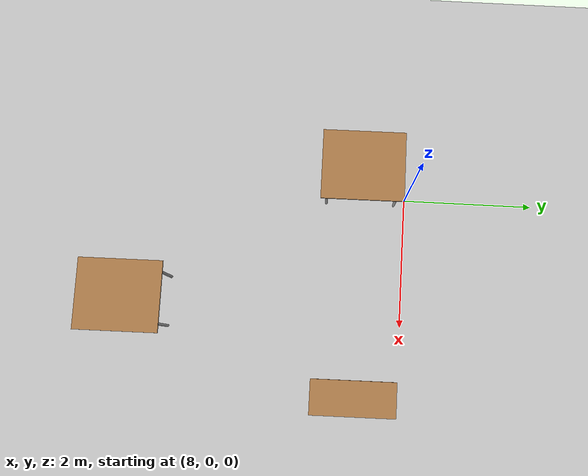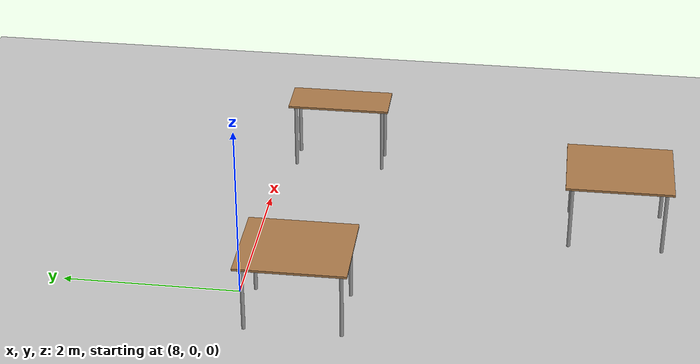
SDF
<sdf version="1.7">
 <world name="default">
  <model name="work_station_clone_clone">
   <link name="link">
    <inertial>
     <inertia><ixx>0</ixx><ixy>0</ixy><ixz>0</ixz><iyy>0</iyy><iyz>0</iyz><izz>0</izz></inertia>
     <mass>0</mass>
    </inertial>
    <visual name="back_right_leg">
     <pose>-0.53 -0.38 0.42 0 -0 0</pose>
     <geometry><cylinder><radius>0.0207459</radius><length>0.822541</length></cylinder></geometry>
     <material>
      <script><uri>file://media/materials/scripts/gazebo.material</uri><name>Gazebo/Grey</name></script>
      <shader type="pixel"><normal_map>__default__</normal_map></shader>
      <ambient>0.3 0.3 0.3 1</ambient>
      <diffuse>0.7 0.7 0.7 1</diffuse>
      <specular>0.01 0.01 0.01 1</specular>
      <emissive>0 0 0 1</emissive>
     </material>
    </visual>
    <visual name="back_left_leg">
     <pose>-0.53 0.38 0.42 0 -0 0</pose>
     <geometry><cylinder><radius>0.0207459</radius><length>0.822541</length></cylinder></geometry>
     <material>
      <script><uri>file://media/materials/scripts/gazebo.material</uri><name>Gazebo/Grey</name></script>
      <shader type="pixel"><normal_map>__default__</normal_map></shader>
      <ambient>0.3 0.3 0.3 1</ambient>
      <diffuse>0.7 0.7 0.7 1</diffuse>
      <specular>0.01 0.01 0.01 1</specular>
      <emissive>0 0 0 1</emissive>
     </material>
    </visual>
    <visual name="front_left_leg">
     <pose>0.53 0.38 0.42 0 -0 0</pose>
     <geometry><cylinder><radius>0.0207459</radius><length>0.822541</length></cylinder></geometry>
     <material>
      <script><uri>file://media/materials/scripts/gazebo.material</uri><name>Gazebo/Grey</name></script>
      <shader type="pixel"><normal_map>__default__</normal_map></shader>
      <ambient>0.3 0.3 0.3 1</ambient>
      <diffuse>0.7 0.7 0.7 1</diffuse>
      <specular>0.01 0.01 0.01 1</specular>
      <emissive>0 0 0 1</emissive>
     </material>
    </visual>
    <visual name="visual1">
     <pose>0 0 0.84 0 -0 0</pose>
     <geometry><box><size>1.21551 1.02942 0.025485</size></box></geometry>
     <material>
      <script><uri>file://media/materials/scripts/gazebo.material</uri><name>Gazebo/Wood</name></script>
      <shader type="pixel"><normal_map>__default__</normal_map></shader>
      <ambient>1 1 1 1</ambient>
      <diffuse>1 1 1 1</diffuse>
      <specular>0.2 0.2 0.2 1</specular>
      <emissive>0 0 0 1</emissive>
     </material>
    </visual>
    <visual name="front_right_leg">
     <pose>0.53 -0.38 0.42 0 -0 0</pose>
     <geometry><cylinder><radius>0.0207459</radius><length>0.822541</length></cylinder></geometry>
     <material>
      <script><uri>file://media/materials/scripts/gazebo.material</uri><name>Gazebo/Grey</name></script>
      <shader type="pixel"><normal_map>__default__</normal_map></shader>
      <ambient>0.3 0.3 0.3 1</ambient>
      <diffuse>0.7 0.7 0.7 1</diffuse>
      <specular>0.01 0.01 0.01 1</specular>
      <emissive>0 0 0 1</emissive>
     </material>
    </visual>
    <collision name="surface">
     <pose>0 0 0.84 0 -0 0</pose>
     <geometry><box><size>1.21551 1.02942 0.025485</size></box></geometry>
     <surface>
      <friction>
       <ode><mu>0.6</mu><mu2>0.6</mu2><fdir1>0 0 0</fdir1><slip1>0</slip1><slip2>0</slip2></ode>
       <torsional>
        <coefficient>1</coefficient>
        <patch_radius>0</patch_radius>
        <surface_radius>0</surface_radius>
        <use_patch_radius>1</use_patch_radius>
        <ode><slip>0</slip></ode>
       </torsional>
      </friction>
      <bounce><restitution_coefficient>0</restitution_coefficient><threshold>1e+06</threshold></bounce>
      <contact>
       <collide_without_contact>0</collide_without_contact>
       <collide_without_contact_bitmask>1</collide_without_contact_bitmask>
       <collide_bitmask>1</collide_bitmask>
       <ode>
        <soft_cfm>0</soft_cfm>
        <soft_erp>0.2</soft_erp>
        <kp>1e+13</kp>
        <kd>1</kd>
        <max_vel>0.01</max_vel>
        <min_depth>0</min_depth>
       </ode>
       <bullet>
        <split_impulse>1</split_impulse>
        <split_impulse_penetration_threshold>-0.01</split_impulse_penetration_threshold>
        <soft_cfm>0</soft_cfm>
        <soft_erp>0.2</soft_erp>
        <kp>1e+13</kp>
        <kd>1</kd>
       </bullet>
      </contact>
     </surface>
    </collision>
    <collision name="front_left_leg">
     <pose>0.53 0.38 0.42 0 -0 0</pose>
     <geometry><cylinder><radius>0.020746</radius><length>0.822541</length></cylinder></geometry>
     <surface>
      <friction>
       <ode><mu>1</mu><mu2>1</mu2><fdir1>0 0 0</fdir1><slip1>0</slip1><slip2>0</slip2></ode>
       <torsional>
        <coefficient>1</coefficient>
        <patch_radius>0</patch_radius>
        <surface_radius>0</surface_radius>
        <use_patch_radius>1</use_patch_radius>
        <ode><slip>0</slip></ode>
       </torsional>
      </friction>
      <bounce><restitution_coefficient>0</restitution_coefficient><threshold>1e+06</threshold></bounce>
      <contact>
       <collide_without_contact>0</collide_without_contact>
       <collide_without_contact_bitmask>1</collide_without_contact_bitmask>
       <collide_bitmask>1</collide_bitmask>
       <ode>
        <soft_cfm>0</soft_cfm>
        <soft_erp>0.2</soft_erp>
        <kp>1e+13</kp>
        <kd>1</kd>
        <max_vel>0.01</max_vel>
        <min_depth>0</min_depth>
       </ode>
       <bullet>
        <split_impulse>1</split_impulse>
        <split_impulse_penetration_threshold>-0.01</split_impulse_penetration_threshold>
        <soft_cfm>0</soft_cfm>
        <soft_erp>0.2</soft_erp>
        <kp>1e+13</kp>
        <kd>1</kd>
       </bullet>
      </contact>
     </surface>
    </collision>
    <collision name="front_right_leg">
     <pose>0.53 -0.38 0.42 0 -0 0</pose>
     <geometry><cylinder><radius>0.020746</radius><length>0.822541</length></cylinder></geometry>
     <surface>
      <friction>
       <ode><mu>1</mu><mu2>1</mu2><fdir1>0 0 0</fdir1><slip1>0</slip1><slip2>0</slip2></ode>
       <torsional>
        <coefficient>1</coefficient>
        <patch_radius>0</patch_radius>
        <surface_radius>0</surface_radius>
        <use_patch_radius>1</use_patch_radius>
        <ode><slip>0</slip></ode>
       </torsional>
      </friction>
      <bounce><restitution_coefficient>0</restitution_coefficient><threshold>1e+06</threshold></bounce>
      <contact>
       <collide_without_contact>0</collide_without_contact>
       <collide_without_contact_bitmask>1</collide_without_contact_bitmask>
       <collide_bitmask>1</collide_bitmask>
       <ode>
        <soft_cfm>0</soft_cfm>
        <soft_erp>0.2</soft_erp>
        <kp>1e+13</kp>
        <kd>1</kd>
        <max_vel>0.01</max_vel>
        <min_depth>0</min_depth>
       </ode>
       <bullet>
        <split_impulse>1</split_impulse>
        <split_impulse_penetration_threshold>-0.01</split_impulse_penetration_threshold>
        <soft_cfm>0</soft_cfm>
        <soft_erp>0.2</soft_erp>
        <kp>1e+13</kp>
        <kd>1</kd>
       </bullet>
      </contact>
     </surface>
    </collision>
    <collision name="back_right_leg">
     <pose>-0.53 -0.38 0.42 0 -0 0</pose>
     <geometry><cylinder><radius>0.020746</radius><length>0.822541</length></cylinder></geometry>
     <surface>
      <friction>
       <ode><mu>1</mu><mu2>1</mu2><fdir1>0 0 0</fdir1><slip1>0</slip1><slip2>0</slip2></ode>
       <torsional>
        <coefficient>1</coefficient>
        <patch_radius>0</patch_radius>
        <surface_radius>0</surface_radius>
        <use_patch_radius>1</use_patch_radius>
        <ode><slip>0</slip></ode>
       </torsional>
      </friction>
      <bounce><restitution_coefficient>0</restitution_coefficient><threshold>1e+06</threshold></bounce>
      <contact>
       <collide_without_contact>0</collide_without_contact>
       <collide_without_contact_bitmask>1</collide_without_contact_bitmask>
       <collide_bitmask>1</collide_bitmask>
       <ode>
        <soft_cfm>0</soft_cfm>
        <soft_erp>0.2</soft_erp>
        <kp>1e+13</kp>
        <kd>1</kd>
        <max_vel>0.01</max_vel>
        <min_depth>0</min_depth>
       </ode>
       <bullet>
        <split_impulse>1</split_impulse>
        <split_impulse_penetration_threshold>-0.01</split_impulse_penetration_threshold>
        <soft_cfm>0</soft_cfm>
        <soft_erp>0.2</soft_erp>
        <kp>1e+13</kp>
        <kd>1</kd>
       </bullet>
      </contact>
     </surface>
    </collision>
    <collision name="back_left_leg">
     <pose>-0.53 0.38 0.42 0 -0 0</pose>
     <geometry><cylinder><radius>0.020746</radius><length>0.822541</length></cylinder></geometry>
     <surface>
      <friction>
       <ode><mu>1</mu><mu2>1</mu2><fdir1>0 0 0</fdir1><slip1>0</slip1><slip2>0</slip2></ode>
       <torsional>
        <coefficient>1</coefficient>
        <patch_radius>0</patch_radius>
        <surface_radius>0</surface_radius>
        <use_patch_radius>1</use_patch_radius>
        <ode><slip>0</slip></ode>
       </torsional>
      </friction>
      <bounce><restitution_coefficient>0</restitution_coefficient><threshold>1e+06</threshold></bounce>
      <contact>
       <collide_without_contact>0</collide_without_contact>
       <collide_without_contact_bitmask>1</collide_without_contact_bitmask>
       <collide_bitmask>1</collide_bitmask>
       <ode>
        <soft_cfm>0</soft_cfm>
        <soft_erp>0.2</soft_erp>
        <kp>1e+13</kp>
        <kd>1</kd>
        <max_vel>0.01</max_vel>
        <min_depth>0</min_depth>
       </ode>
       <bullet>
        <split_impulse>1</split_impulse>
        <split_impulse_penetration_threshold>-0.01</split_impulse_penetration_threshold>
        <soft_cfm>0</soft_cfm>
        <soft_erp>0.2</soft_erp>
        <kp>1e+13</kp>
        <kd>1</kd>
       </bullet>
      </contact>
     </surface>
    </collision>
   </link>
   <static>1</static>
   <pose>9.77463 -4.10222 0 0 0 -1.56528</pose>
  </model>
  <model name="work_station_clone_clone_clone_clone_clone_clone_clone_clone_clone_clone_clone">
   <link name="link">
    <inertial>
     <inertia><ixx>0</ixx><ixy>0</ixy><ixz>0</ixz><iyy>0</iyy><iyz>0</iyz><izz>0</izz></inertia>
     <mass>0</mass>
    </inertial>
    <visual name="back_right_leg">
     <pose>-0.53 -0.38 0.42 0 -0 0</pose>
     <geometry><cylinder><radius>0.0207459</radius><length>0.822541</length></cylinder></geometry>
     <material>
      <script><uri>file://media/materials/scripts/gazebo.material</uri><name>Gazebo/Grey</name></script>
      <shader type="pixel"><normal_map>__default__</normal_map></shader>
      <ambient>0.3 0.3 0.3 1</ambient>
      <diffuse>0.7 0.7 0.7 1</diffuse>
      <specular>0.01 0.01 0.01 1</specular>
      <emissive>0 0 0 1</emissive>
     </material>
    </visual>
    <visual name="back_left_leg">
     <pose>-0.53 0.38 0.42 0 -0 0</pose>
     <geometry><cylinder><radius>0.0207459</radius><length>0.822541</length></cylinder></geometry>
     <material>
      <script><uri>file://media/materials/scripts/gazebo.material</uri><name>Gazebo/Grey</name></script>
      <shader type="pixel"><normal_map>__default__</normal_map></shader>
      <ambient>0.3 0.3 0.3 1</ambient>
      <diffuse>0.7 0.7 0.7 1</diffuse>
      <specular>0.01 0.01 0.01 1</specular>
      <emissive>0 0 0 1</emissive>
     </material>
    </visual>
    <visual name="front_left_leg">
     <pose>0.53 0.38 0.42 0 -0 0</pose>
     <geometry><cylinder><radius>0.0207459</radius><length>0.822541</length></cylinder></geometry>
     <material>
      <script><uri>file://media/materials/scripts/gazebo.material</uri><name>Gazebo/Grey</name></script>
      <shader type="pixel"><normal_map>__default__</normal_map></shader>
      <ambient>0.3 0.3 0.3 1</ambient>
      <diffuse>0.7 0.7 0.7 1</diffuse>
      <specular>0.01 0.01 0.01 1</specular>
      <emissive>0 0 0 1</emissive>
     </material>
    </visual>
    <visual name="visual1">
     <pose>0 0 0.84 0 -0 0</pose>
     <geometry><box><size>1.21551 1.02942 0.025485</size></box></geometry>
     <material>
      <script><uri>file://media/materials/scripts/gazebo.material</uri><name>Gazebo/Wood</name></script>
      <shader type="pixel"><normal_map>__default__</normal_map></shader>
      <ambient>1 1 1 1</ambient>
      <diffuse>1 1 1 1</diffuse>
      <specular>0.2 0.2 0.2 1</specular>
      <emissive>0 0 0 1</emissive>
     </material>
    </visual>
    <visual name="front_right_leg">
     <pose>0.53 -0.38 0.42 0 -0 0</pose>
     <geometry><cylinder><radius>0.0207459</radius><length>0.822541</length></cylinder></geometry>
     <material>
      <script><uri>file://media/materials/scripts/gazebo.material</uri><name>Gazebo/Grey</name></script>
      <shader type="pixel"><normal_map>__default__</normal_map></shader>
      <ambient>0.3 0.3 0.3 1</ambient>
      <diffuse>0.7 0.7 0.7 1</diffuse>
      <specular>0.01 0.01 0.01 1</specular>
      <emissive>0 0 0 1</emissive>
     </material>
    </visual>
    <collision name="surface">
     <pose>0 0 0.84 0 -0 0</pose>
     <geometry><box><size>1.21551 1.02942 0.025485</size></box></geometry>
     <surface>
      <friction>
       <ode><mu>0.6</mu><mu2>0.6</mu2><fdir1>0 0 0</fdir1><slip1>0</slip1><slip2>0</slip2></ode>
       <torsional>
        <coefficient>1</coefficient>
        <patch_radius>0</patch_radius>
        <surface_radius>0</surface_radius>
        <use_patch_radius>1</use_patch_radius>
        <ode><slip>0</slip></ode>
       </torsional>
      </friction>
      <bounce><restitution_coefficient>0</restitution_coefficient><threshold>1e+06</threshold></bounce>
      <contact>
       <collide_without_contact>0</collide_without_contact>
       <collide_without_contact_bitmask>1</collide_without_contact_bitmask>
       <collide_bitmask>1</collide_bitmask>
       <ode>
        <soft_cfm>0</soft_cfm>
        <soft_erp>0.2</soft_erp>
        <kp>1e+13</kp>
        <kd>1</kd>
        <max_vel>0.01</max_vel>
        <min_depth>0</min_depth>
       </ode>
       <bullet>
        <split_impulse>1</split_impulse>
        <split_impulse_penetration_threshold>-0.01</split_impulse_penetration_threshold>
        <soft_cfm>0</soft_cfm>
        <soft_erp>0.2</soft_erp>
        <kp>1e+13</kp>
        <kd>1</kd>
       </bullet>
      </contact>
     </surface>
    </collision>
    <collision name="front_left_leg">
     <pose>0.53 0.38 0.42 0 -0 0</pose>
     <geometry><cylinder><radius>0.020746</radius><length>0.822541</length></cylinder></geometry>
     <surface>
      <friction>
       <ode><mu>1</mu><mu2>1</mu2><fdir1>0 0 0</fdir1><slip1>0</slip1><slip2>0</slip2></ode>
       <torsional>
        <coefficient>1</coefficient>
        <patch_radius>0</patch_radius>
        <surface_radius>0</surface_radius>
        <use_patch_radius>1</use_patch_radius>
        <ode><slip>0</slip></ode>
       </torsional>
      </friction>
      <bounce><restitution_coefficient>0</restitution_coefficient><threshold>1e+06</threshold></bounce>
      <contact>
       <collide_without_contact>0</collide_without_contact>
       <collide_without_contact_bitmask>1</collide_without_contact_bitmask>
       <collide_bitmask>1</collide_bitmask>
       <ode>
        <soft_cfm>0</soft_cfm>
        <soft_erp>0.2</soft_erp>
        <kp>1e+13</kp>
        <kd>1</kd>
        <max_vel>0.01</max_vel>
        <min_depth>0</min_depth>
       </ode>
       <bullet>
        <split_impulse>1</split_impulse>
        <split_impulse_penetration_threshold>-0.01</split_impulse_penetration_threshold>
        <soft_cfm>0</soft_cfm>
        <soft_erp>0.2</soft_erp>
        <kp>1e+13</kp>
        <kd>1</kd>
       </bullet>
      </contact>
     </surface>
    </collision>
    <collision name="front_right_leg">
     <pose>0.53 -0.38 0.42 0 -0 0</pose>
     <geometry><cylinder><radius>0.020746</radius><length>0.822541</length></cylinder></geometry>
     <surface>
      <friction>
       <ode><mu>1</mu><mu2>1</mu2><fdir1>0 0 0</fdir1><slip1>0</slip1><slip2>0</slip2></ode>
       <torsional>
        <coefficient>1</coefficient>
        <patch_radius>0</patch_radius>
        <surface_radius>0</surface_radius>
        <use_patch_radius>1</use_patch_radius>
        <ode><slip>0</slip></ode>
       </torsional>
      </friction>
      <bounce><restitution_coefficient>0</restitution_coefficient><threshold>1e+06</threshold></bounce>
      <contact>
       <collide_without_contact>0</collide_without_contact>
       <collide_without_contact_bitmask>1</collide_without_contact_bitmask>
       <collide_bitmask>1</collide_bitmask>
       <ode>
        <soft_cfm>0</soft_cfm>
        <soft_erp>0.2</soft_erp>
        <kp>1e+13</kp>
        <kd>1</kd>
        <max_vel>0.01</max_vel>
        <min_depth>0</min_depth>
       </ode>
       <bullet>
        <split_impulse>1</split_impulse>
        <split_impulse_penetration_threshold>-0.01</split_impulse_penetration_threshold>
        <soft_cfm>0</soft_cfm>
        <soft_erp>0.2</soft_erp>
        <kp>1e+13</kp>
        <kd>1</kd>
       </bullet>
      </contact>
     </surface>
    </collision>
    <collision name="back_right_leg">
     <pose>-0.53 -0.38 0.42 0 -0 0</pose>
     <geometry><cylinder><radius>0.020746</radius><length>0.822541</length></cylinder></geometry>
     <surface>
      <friction>
       <ode><mu>1</mu><mu2>1</mu2><fdir1>0 0 0</fdir1><slip1>0</slip1><slip2>0</slip2></ode>
       <torsional>
        <coefficient>1</coefficient>
        <patch_radius>0</patch_radius>
        <surface_radius>0</surface_radius>
        <use_patch_radius>1</use_patch_radius>
        <ode><slip>0</slip></ode>
       </torsional>
      </friction>
      <bounce><restitution_coefficient>0</restitution_coefficient><threshold>1e+06</threshold></bounce>
      <contact>
       <collide_without_contact>0</collide_without_contact>
       <collide_without_contact_bitmask>1</collide_without_contact_bitmask>
       <collide_bitmask>1</collide_bitmask>
       <ode>
        <soft_cfm>0</soft_cfm>
        <soft_erp>0.2</soft_erp>
        <kp>1e+13</kp>
        <kd>1</kd>
        <max_vel>0.01</max_vel>
        <min_depth>0</min_depth>
       </ode>
       <bullet>
        <split_impulse>1</split_impulse>
        <split_impulse_penetration_threshold>-0.01</split_impulse_penetration_threshold>
        <soft_cfm>0</soft_cfm>
        <soft_erp>0.2</soft_erp>
        <kp>1e+13</kp>
        <kd>1</kd>
       </bullet>
      </contact>
     </surface>
    </collision>
    <collision name="back_left_leg">
     <pose>-0.53 0.38 0.42 0 -0 0</pose>
     <geometry><cylinder><radius>0.020746</radius><length>0.822541</length></cylinder></geometry>
     <surface>
      <friction>
       <ode><mu>1</mu><mu2>1</mu2><fdir1>0 0 0</fdir1><slip1>0</slip1><slip2>0</slip2></ode>
       <torsional>
        <coefficient>1</coefficient>
        <patch_radius>0</patch_radius>
        <surface_radius>0</surface_radius>
        <use_patch_radius>1</use_patch_radius>
        <ode><slip>0</slip></ode>
       </torsional>
      </friction>
      <bounce><restitution_coefficient>0</restitution_coefficient><threshold>1e+06</threshold></bounce>
      <contact>
       <collide_without_contact>0</collide_without_contact>
       <collide_without_contact_bitmask>1</collide_without_contact_bitmask>
       <collide_bitmask>1</collide_bitmask>
       <ode>
        <soft_cfm>0</soft_cfm>
        <soft_erp>0.2</soft_erp>
        <kp>1e+13</kp>
        <kd>1</kd>
        <max_vel>0.01</max_vel>
        <min_depth>0</min_depth>
       </ode>
       <bullet>
        <split_impulse>1</split_impulse>
        <split_impulse_penetration_threshold>-0.01</split_impulse_penetration_threshold>
        <soft_cfm>0</soft_cfm>
        <soft_erp>0.2</soft_erp>
        <kp>1e+13</kp>
        <kd>1</kd>
       </bullet>
      </contact>
     </surface>
    </collision>
   </link>
   <static>1</static>
   <pose>7.70394 -0.698036 -0.010044 0 0 -1.56528</pose>
  </model>
  <model name="work_station_half_clone_0">
   <link name="link">
    <inertial>
     <inertia><ixx>0</ixx><ixy>0</ixy><ixz>0</ixz><iyy>0</iyy><iyz>0</iyz><izz>0</izz></inertia>
     <mass>0</mass>
    </inertial>
    <visual name="back_right_leg">
     <pose>-0.53 -0.17 0.42 0 -0 0</pose>
     <geometry><cylinder><radius>0.0207459</radius><length>0.822541</length></cylinder></geometry>
     <material>
      <script><uri>file://media/materials/scripts/gazebo.material</uri><name>Gazebo/Grey</name></script>
      <shader type="pixel"><normal_map>__default__</normal_map></shader>
      <ambient>0.3 0.3 0.3 1</ambient>
      <diffuse>0.7 0.7 0.7 1</diffuse>
      <specular>0.01 0.01 0.01 1</specular>
      <emissive>0 0 0 1</emissive>
     </material>
    </visual>
    <visual name="back_left_leg">
     <pose>-0.53 0.17 0.42 0 -0 0</pose>
     <geometry><cylinder><radius>0.0207459</radius><length>0.822541</length></cylinder></geometry>
     <material>
      <script><uri>file://media/materials/scripts/gazebo.material</uri><name>Gazebo/Grey</name></script>
      <shader type="pixel"><normal_map>__default__</normal_map></shader>
      <ambient>0.3 0.3 0.3 1</ambient>
      <diffuse>0.7 0.7 0.7 1</diffuse>
      <specular>0.01 0.01 0.01 1</specular>
      <emissive>0 0 0 1</emissive>
     </material>
    </visual>
    <visual name="front_left_leg">
     <pose>0.53 0.17 0.42 0 -0 0</pose>
     <geometry><cylinder><radius>0.0207459</radius><length>0.822541</length></cylinder></geometry>
     <material>
      <script><uri>file://media/materials/scripts/gazebo.material</uri><name>Gazebo/Grey</name></script>
      <shader type="pixel"><normal_map>__default__</normal_map></shader>
      <ambient>0.3 0.3 0.3 1</ambient>
      <diffuse>0.7 0.7 0.7 1</diffuse>
      <specular>0.01 0.01 0.01 1</specular>
      <emissive>0 0 0 1</emissive>
     </material>
    </visual>
    <visual name="visual1">
     <pose>0 0 0.84 0 -0 0</pose>
     <geometry><box><size>1.21551 0.5 0.025485</size></box></geometry>
     <material>
      <script><uri>file://media/materials/scripts/gazebo.material</uri><name>Gazebo/Wood</name></script>
      <shader type="pixel"><normal_map>__default__</normal_map></shader>
      <ambient>1 1 1 1</ambient>
      <diffuse>1 1 1 1</diffuse>
      <specular>0.2 0.2 0.2 1</specular>
      <emissive>0 0 0 1</emissive>
     </material>
    </visual>
    <visual name="front_right_leg">
     <pose>0.53 -0.17 0.42 0 -0 0</pose>
     <geometry><cylinder><radius>0.0207459</radius><length>0.822541</length></cylinder></geometry>
     <material>
      <script><uri>file://media/materials/scripts/gazebo.material</uri><name>Gazebo/Grey</name></script>
      <shader type="pixel"><normal_map>__default__</normal_map></shader>
      <ambient>0.3 0.3 0.3 1</ambient>
      <diffuse>0.7 0.7 0.7 1</diffuse>
      <specular>0.01 0.01 0.01 1</specular>
      <emissive>0 0 0 1</emissive>
     </material>
    </visual>
    <collision name="surface">
     <pose>0 0 0.84 0 -0 0</pose>
     <geometry><box><size>1.21551 0.5 0.025485</size></box></geometry>
     <surface>
      <friction>
       <ode><mu>0.6</mu><mu2>0.6</mu2><fdir1>0 0 0</fdir1><slip1>0</slip1><slip2>0</slip2></ode>
       <torsional>
        <coefficient>1</coefficient>
        <patch_radius>0</patch_radius>
        <surface_radius>0</surface_radius>
        <use_patch_radius>1</use_patch_radius>
        <ode><slip>0</slip></ode>
       </torsional>
      </friction>
      <bounce><restitution_coefficient>0</restitution_coefficient><threshold>1e+06</threshold></bounce>
      <contact>
       <collide_without_contact>0</collide_without_contact>
       <collide_without_contact_bitmask>1</collide_without_contact_bitmask>
       <collide_bitmask>1</collide_bitmask>
       <ode>
        <soft_cfm>0</soft_cfm>
        <soft_erp>0.2</soft_erp>
        <kp>1e+13</kp>
        <kd>1</kd>
        <max_vel>0.01</max_vel>
        <min_depth>0</min_depth>
       </ode>
       <bullet>
        <split_impulse>1</split_impulse>
        <split_impulse_penetration_threshold>-0.01</split_impulse_penetration_threshold>
        <soft_cfm>0</soft_cfm>
        <soft_erp>0.2</soft_erp>
        <kp>1e+13</kp>
        <kd>1</kd>
       </bullet>
      </contact>
     </surface>
    </collision>
    <collision name="front_right_leg">
     <pose>0.53 -0.17 0.42 0 -0 0</pose>
     <geometry><cylinder><radius>0.020746</radius><length>0.822541</length></cylinder></geometry>
     <surface>
      <friction>
       <ode><mu>1</mu><mu2>1</mu2><fdir1>0 0 0</fdir1><slip1>0</slip1><slip2>0</slip2></ode>
       <torsional>
        <coefficient>1</coefficient>
        <patch_radius>0</patch_radius>
        <surface_radius>0</surface_radius>
        <use_patch_radius>1</use_patch_radius>
        <ode><slip>0</slip></ode>
       </torsional>
      </friction>
      <bounce><restitution_coefficient>0</restitution_coefficient><threshold>1e+06</threshold></bounce>
      <contact>
       <collide_without_contact>0</collide_without_contact>
       <collide_without_contact_bitmask>1</collide_without_contact_bitmask>
       <collide_bitmask>1</collide_bitmask>
       <ode>
        <soft_cfm>0</soft_cfm>
        <soft_erp>0.2</soft_erp>
        <kp>1e+13</kp>
        <kd>1</kd>
        <max_vel>0.01</max_vel>
        <min_depth>0</min_depth>
       </ode>
       <bullet>
        <split_impulse>1</split_impulse>
        <split_impulse_penetration_threshold>-0.01</split_impulse_penetration_threshold>
        <soft_cfm>0</soft_cfm>
        <soft_erp>0.2</soft_erp>
        <kp>1e+13</kp>
        <kd>1</kd>
       </bullet>
      </contact>
     </surface>
    </collision>
    <collision name="front_left_leg">
     <pose>0.53 0.17 0.42 0 -0 0</pose>
     <geometry><cylinder><radius>0.020746</radius><length>0.822541</length></cylinder></geometry>
     <surface>
      <friction>
       <ode><mu>1</mu><mu2>1</mu2><fdir1>0 0 0</fdir1><slip1>0</slip1><slip2>0</slip2></ode>
       <torsional>
        <coefficient>1</coefficient>
        <patch_radius>0</patch_radius>
        <surface_radius>0</surface_radius>
        <use_patch_radius>1</use_patch_radius>
        <ode><slip>0</slip></ode>
       </torsional>
      </friction>
      <bounce><restitution_coefficient>0</restitution_coefficient><threshold>1e+06</threshold></bounce>
      <contact>
       <collide_without_contact>0</collide_without_contact>
       <collide_without_contact_bitmask>1</collide_without_contact_bitmask>
       <collide_bitmask>1</collide_bitmask>
       <ode>
        <soft_cfm>0</soft_cfm>
        <soft_erp>0.2</soft_erp>
        <kp>1e+13</kp>
        <kd>1</kd>
        <max_vel>0.01</max_vel>
        <min_depth>0</min_depth>
       </ode>
       <bullet>
        <split_impulse>1</split_impulse>
        <split_impulse_penetration_threshold>-0.01</split_impulse_penetration_threshold>
        <soft_cfm>0</soft_cfm>
        <soft_erp>0.2</soft_erp>
        <kp>1e+13</kp>
        <kd>1</kd>
       </bullet>
      </contact>
     </surface>
    </collision>
    <collision name="back_right_leg">
     <pose>-0.53 -0.17 0.42 0 -0 0</pose>
     <geometry><cylinder><radius>0.020746</radius><length>0.822541</length></cylinder></geometry>
     <surface>
      <friction>
       <ode><mu>1</mu><mu2>1</mu2><fdir1>0 0 0</fdir1><slip1>0</slip1><slip2>0</slip2></ode>
       <torsional>
        <coefficient>1</coefficient>
        <patch_radius>0</patch_radius>
        <surface_radius>0</surface_radius>
        <use_patch_radius>1</use_patch_radius>
        <ode><slip>0</slip></ode>
       </torsional>
      </friction>
      <bounce><restitution_coefficient>0</restitution_coefficient><threshold>1e+06</threshold></bounce>
      <contact>
       <collide_without_contact>0</collide_without_contact>
       <collide_without_contact_bitmask>1</collide_without_contact_bitmask>
       <collide_bitmask>1</collide_bitmask>
       <ode>
        <soft_cfm>0</soft_cfm>
        <soft_erp>0.2</soft_erp>
        <kp>1e+13</kp>
        <kd>1</kd>
        <max_vel>0.01</max_vel>
        <min_depth>0</min_depth>
       </ode>
       <bullet>
        <split_impulse>1</split_impulse>
        <split_impulse_penetration_threshold>-0.01</split_impulse_penetration_threshold>
        <soft_cfm>0</soft_cfm>
        <soft_erp>0.2</soft_erp>
        <kp>1e+13</kp>
        <kd>1</kd>
       </bullet>
      </contact>
     </surface>
    </collision>
    <collision name="back_left_leg">
     <pose>-0.53 0.17 0.42 0 -0 0</pose>
     <geometry><cylinder><radius>0.020746</radius><length>0.822541</length></cylinder></geometry>
     <surface>
      <friction>
       <ode><mu>1</mu><mu2>1</mu2><fdir1>0 0 0</fdir1><slip1>0</slip1><slip2>0</slip2></ode>
       <torsional>
        <coefficient>1</coefficient>
        <patch_radius>0</patch_radius>
        <surface_radius>0</surface_radius>
        <use_patch_radius>1</use_patch_radius>
        <ode><slip>0</slip></ode>
       </torsional>
      </friction>
      <bounce><restitution_coefficient>0</restitution_coefficient><threshold>1e+06</threshold></bounce>
      <contact>
       <collide_without_contact>0</collide_without_contact>
       <collide_without_contact_bitmask>1</collide_without_contact_bitmask>
       <collide_bitmask>1</collide_bitmask>
       <ode>
        <soft_cfm>0</soft_cfm>
        <soft_erp>0.2</soft_erp>
        <kp>1e+13</kp>
        <kd>1</kd>
        <max_vel>0.01</max_vel>
        <min_depth>0</min_depth>
       </ode>
       <bullet>
        <split_impulse>1</split_impulse>
        <split_impulse_penetration_threshold>-0.01</split_impulse_penetration_threshold>
        <soft_cfm>0</soft_cfm>
        <soft_erp>0.2</soft_erp>
        <kp>1e+13</kp>
        <kd>1</kd>
       </bullet>
      </contact>
     </surface>
    </collision>
   </link>
   <static>1</static>
   <pose>11.052 -0.702842 -0.010044 0 0 -1.56528</pose>
  </model>
  <model name="ground_plane">
   <static>1</static>
   <link name="link">
    <collision name="collision">
     <geometry><plane><normal>0 0 1</normal><size>100 100</size></plane></geometry>
     <surface>
      <contact><collide_bitmask>65535</collide_bitmask></contact>
      <friction><ode><mu>100</mu><mu2>50</mu2></ode></friction>
     </surface>
    </collision>
    <visual name="visual">
     <cast_shadows>0</cast_shadows>
     <geometry><plane><normal>0 0 1</normal><size>100 100</size></plane></geometry>
     <material>
      <script><uri>file://media/materials/scripts/gazebo.material</uri><name>Gazebo/Grey</name></script>
     </material>
    </visual>
   </link>
  </model>
 </world>
</sdf>
